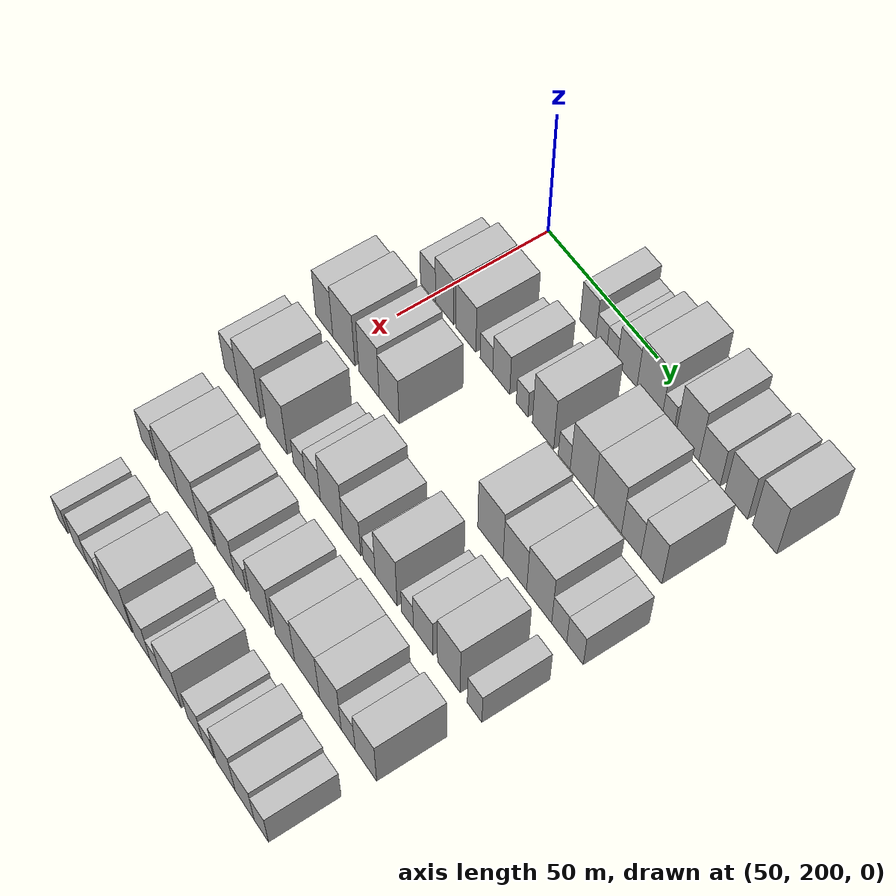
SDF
<sdf version="1.6">
 <world name="default">
  <model name="building_81">
   <static>1</static>
   <pose>50.0000 232.0822 0 0.000000 0.000000 0.000000</pose>
   <link name="link">
    <pose>0 0 9.00 0 0 0</pose>
    <collision name="collision"><geometry><box><size>20.0000 7.2018 18.0000</size></box></geometry></collision>
    <visual name="visual">
     <cast_shadows>0</cast_shadows>
     <geometry><box><size>20.0000 7.2018 18.0000</size></box></geometry>
     <material>
      <script>
       <uri>model://HANNAS_wall/materials/scripts</uri>
       <uri>model://HANNAS_wall/materials/textures</uri>
       <name>vrc/HANNAS_wall</name>
      </script>
     </material>
    </visual>
   </link>
  </model>
  <model name="building_82">
   <static>1</static>
   <pose>50.0000 238.1097 0 0.000000 0.000000 0.000000</pose>
   <link name="link">
    <pose>0 0 6.00 0 0 0</pose>
    <collision name="collision"><geometry><box><size>20.0000 4.8532 12.0000</size></box></geometry></collision>
    <visual name="visual">
     <cast_shadows>0</cast_shadows>
     <geometry><box><size>20.0000 4.8532 12.0000</size></box></geometry>
     <material>
      <script>
       <uri>model://HANNAS_wall/materials/scripts</uri>
       <uri>model://HANNAS_wall/materials/textures</uri>
       <name>vrc/HANNAS_wall</name>
      </script>
     </material>
    </visual>
   </link>
  </model>
  <model name="building_83">
   <static>1</static>
   <pose>50.0000 242.9436 0 0.000000 0.000000 0.000000</pose>
   <link name="link">
    <pose>0 0 6.00 0 0 0</pose>
    <collision name="collision"><geometry><box><size>20.0000 4.8146 12.0000</size></box></geometry></collision>
    <visual name="visual">
     <cast_shadows>0</cast_shadows>
     <geometry><box><size>20.0000 4.8146 12.0000</size></box></geometry>
     <material>
      <script>
       <uri>model://HANNAS_wall/materials/scripts</uri>
       <uri>model://HANNAS_wall/materials/textures</uri>
       <name>vrc/HANNAS_wall</name>
      </script>
     </material>
    </visual>
   </link>
  </model>
  <model name="building_84">
   <static>1</static>
   <pose>50.0000 249.7162 0 0.000000 0.000000 0.000000</pose>
   <link name="link">
    <pose>0 0 9.00 0 0 0</pose>
    <collision name="collision"><geometry><box><size>20.0000 8.7304 18.0000</size></box></geometry></collision>
    <visual name="visual">
     <cast_shadows>0</cast_shadows>
     <geometry><box><size>20.0000 8.7304 18.0000</size></box></geometry>
     <material>
      <script>
       <uri>model://HANNAS_wall/materials/scripts</uri>
       <uri>model://HANNAS_wall/materials/textures</uri>
       <name>vrc/HANNAS_wall</name>
      </script>
     </material>
    </visual>
   </link>
  </model>
  <model name="building_85">
   <static>1</static>
   <pose>50.0000 259.5918 0 0.000000 0.000000 0.000000</pose>
   <link name="link">
    <pose>0 0 12.00 0 0 0</pose>
    <collision name="collision"><geometry><box><size>20.0000 11.0208 24.0000</size></box></geometry></collision>
    <visual name="visual">
     <cast_shadows>0</cast_shadows>
     <geometry><box><size>20.0000 11.0208 24.0000</size></box></geometry>
     <material>
      <script>
       <uri>model://HANNAS_wall/materials/scripts</uri>
       <uri>model://HANNAS_wall/materials/textures</uri>
       <name>vrc/HANNAS_wall</name>
      </script>
     </material>
    </visual>
   </link>
  </model>
  <model name="building_86">
   <static>1</static>
   <pose>50.0000 267.6276 0 0.000000 0.000000 0.000000</pose>
   <link name="link">
    <pose>0 0 6.00 0 0 0</pose>
    <collision name="collision"><geometry><box><size>20.0000 5.0508 12.0000</size></box></geometry></collision>
    <visual name="visual">
     <cast_shadows>0</cast_shadows>
     <geometry><box><size>20.0000 5.0508 12.0000</size></box></geometry>
     <material>
      <script>
       <uri>model://HANNAS_wall/materials/scripts</uri>
       <uri>model://HANNAS_wall/materials/textures</uri>
       <name>vrc/HANNAS_wall</name>
      </script>
     </material>
    </visual>
   </link>
  </model>
  <model name="building_87">
   <static>1</static>
   <pose>50.0000 276.0308 0 0.000000 0.000000 0.000000</pose>
   <link name="link">
    <pose>0 0 12.00 0 0 0</pose>
    <collision name="collision"><geometry><box><size>20.0000 9.7556 24.0000</size></box></geometry></collision>
    <visual name="visual">
     <cast_shadows>0</cast_shadows>
     <geometry><box><size>20.0000 9.7556 24.0000</size></box></geometry>
     <material>
      <script>
       <uri>model://HANNAS_wall/materials/scripts</uri>
       <uri>model://HANNAS_wall/materials/textures</uri>
       <name>vrc/HANNAS_wall</name>
      </script>
     </material>
    </visual>
   </link>
  </model>
  <model name="building_88">
   <static>1</static>
   <pose>50.0000 285.3650 0 0.000000 0.000000 0.000000</pose>
   <link name="link">
    <pose>0 0 9.00 0 0 0</pose>
    <collision name="collision"><geometry><box><size>20.0000 8.9129 18.0000</size></box></geometry></collision>
    <visual name="visual">
     <cast_shadows>0</cast_shadows>
     <geometry><box><size>20.0000 8.9129 18.0000</size></box></geometry>
     <material>
      <script>
       <uri>model://HANNAS_wall/materials/scripts</uri>
       <uri>model://HANNAS_wall/materials/textures</uri>
       <name>vrc/HANNAS_wall</name>
      </script>
     </material>
    </visual>
   </link>
  </model>
  <model name="building_89">
   <static>1</static>
   <pose>50.0000 296.5421 0 0.000000 0.000000 0.000000</pose>
   <link name="link">
    <pose>0 0 10.50 0 0 0</pose>
    <collision name="collision"><geometry><box><size>20.0000 9.4413 21.0000</size></box></geometry></collision>
    <visual name="visual">
     <cast_shadows>0</cast_shadows>
     <geometry><box><size>20.0000 9.4413 21.0000</size></box></geometry>
     <material>
      <script>
       <uri>model://HANNAS_wall/materials/scripts</uri>
       <uri>model://HANNAS_wall/materials/textures</uri>
       <name>vrc/HANNAS_wall</name>
      </script>
     </material>
    </visual>
   </link>
  </model>
  <model name="building_90">
   <static>1</static>
   <pose>50.0000 308.1931 0 0.000000 0.000000 0.000000</pose>
   <link name="link">
    <pose>0 0 12.00 0 0 0</pose>
    <collision name="collision"><geometry><box><size>20.0000 9.8607 24.0000</size></box></geometry></collision>
    <visual name="visual">
     <cast_shadows>0</cast_shadows>
     <geometry><box><size>20.0000 9.8607 24.0000</size></box></geometry>
     <material>
      <script>
       <uri>model://HANNAS_wall/materials/scripts</uri>
       <uri>model://HANNAS_wall/materials/textures</uri>
       <name>vrc/HANNAS_wall</name>
      </script>
     </material>
    </visual>
   </link>
  </model>
  <model name="building_197">
   <static>1</static>
   <pose>79.0000 198.4437 0 0.000000 0.000000 0.000000</pose>
   <link name="link">
    <pose>0 0 7.50 0 0 0</pose>
    <collision name="collision"><geometry><box><size>20.0000 7.3373 15.0000</size></box></geometry></collision>
    <visual name="visual">
     <cast_shadows>0</cast_shadows>
     <geometry><box><size>20.0000 7.3373 15.0000</size></box></geometry>
     <material>
      <script>
       <uri>model://HANNAS_wall/materials/scripts</uri>
       <uri>model://HANNAS_wall/materials/textures</uri>
       <name>vrc/HANNAS_wall</name>
      </script>
     </material>
    </visual>
   </link>
  </model>
  <model name="building_198">
   <static>1</static>
   <pose>79.0000 206.5145 0 0.000000 0.000000 0.000000</pose>
   <link name="link">
    <pose>0 0 10.50 0 0 0</pose>
    <collision name="collision"><geometry><box><size>20.0000 8.8042 21.0000</size></box></geometry></collision>
    <visual name="visual">
     <cast_shadows>0</cast_shadows>
     <geometry><box><size>20.0000 8.8042 21.0000</size></box></geometry>
     <material>
      <script>
       <uri>model://HANNAS_wall/materials/scripts</uri>
       <uri>model://HANNAS_wall/materials/textures</uri>
       <name>vrc/HANNAS_wall</name>
      </script>
     </material>
    </visual>
   </link>
  </model>
  <model name="building_199">
   <static>1</static>
   <pose>79.0000 216.6634 0 0.000000 0.000000 0.000000</pose>
   <link name="link">
    <pose>0 0 10.50 0 0 0</pose>
    <collision name="collision"><geometry><box><size>20.0000 9.4935 21.0000</size></box></geometry></collision>
    <visual name="visual">
     <cast_shadows>0</cast_shadows>
     <geometry><box><size>20.0000 9.4935 21.0000</size></box></geometry>
     <material>
      <script>
       <uri>model://HANNAS_wall/materials/scripts</uri>
       <uri>model://HANNAS_wall/materials/textures</uri>
       <name>vrc/HANNAS_wall</name>
      </script>
     </material>
    </visual>
   </link>
  </model>
  <model name="building_200">
   <static>1</static>
   <pose>79.0000 226.3598 0 0.000000 0.000000 0.000000</pose>
   <link name="link">
    <pose>0 0 6.00 0 0 0</pose>
    <collision name="collision"><geometry><box><size>20.0000 5.8993 12.0000</size></box></geometry></collision>
    <visual name="visual">
     <cast_shadows>0</cast_shadows>
     <geometry><box><size>20.0000 5.8993 12.0000</size></box></geometry>
     <material>
      <script>
       <uri>model://HANNAS_wall/materials/scripts</uri>
       <uri>model://HANNAS_wall/materials/textures</uri>
       <name>vrc/HANNAS_wall</name>
      </script>
     </material>
    </visual>
   </link>
  </model>
  <model name="building_201">
   <static>1</static>
   <pose>79.0000 233.2554 0 0.000000 0.000000 0.000000</pose>
   <link name="link">
    <pose>0 0 9.00 0 0 0</pose>
    <collision name="collision"><geometry><box><size>20.0000 7.8919 18.0000</size></box></geometry></collision>
    <visual name="visual">
     <cast_shadows>0</cast_shadows>
     <geometry><box><size>20.0000 7.8919 18.0000</size></box></geometry>
     <material>
      <script>
       <uri>model://HANNAS_wall/materials/scripts</uri>
       <uri>model://HANNAS_wall/materials/textures</uri>
       <name>vrc/HANNAS_wall</name>
      </script>
     </material>
    </visual>
   </link>
  </model>
  <model name="building_202">
   <static>1</static>
   <pose>79.0000 242.8614 0 0.000000 0.000000 0.000000</pose>
   <link name="link">
    <pose>0 0 6.00 0 0 0</pose>
    <collision name="collision"><geometry><box><size>20.0000 5.3201 12.0000</size></box></geometry></collision>
    <visual name="visual">
     <cast_shadows>0</cast_shadows>
     <geometry><box><size>20.0000 5.3201 12.0000</size></box></geometry>
     <material>
      <script>
       <uri>model://HANNAS_wall/materials/scripts</uri>
       <uri>model://HANNAS_wall/materials/textures</uri>
       <name>vrc/HANNAS_wall</name>
      </script>
     </material>
    </visual>
   </link>
  </model>
  <model name="building_203">
   <static>1</static>
   <pose>79.0000 252.3346 0 0.000000 0.000000 0.000000</pose>
   <link name="link">
    <pose>0 0 12.00 0 0 0</pose>
    <collision name="collision"><geometry><box><size>20.0000 9.6264 24.0000</size></box></geometry></collision>
    <visual name="visual">
     <cast_shadows>0</cast_shadows>
     <geometry><box><size>20.0000 9.6264 24.0000</size></box></geometry>
     <material>
      <script>
       <uri>model://HANNAS_wall/materials/scripts</uri>
       <uri>model://HANNAS_wall/materials/textures</uri>
       <name>vrc/HANNAS_wall</name>
      </script>
     </material>
    </visual>
   </link>
  </model>
  <model name="building_204">
   <static>1</static>
   <pose>79.0000 261.7977 0 0.000000 0.000000 0.000000</pose>
   <link name="link">
    <pose>0 0 6.00 0 0 0</pose>
    <collision name="collision"><geometry><box><size>20.0000 5.2998 12.0000</size></box></geometry></collision>
    <visual name="visual">
     <cast_shadows>0</cast_shadows>
     <geometry><box><size>20.0000 5.2998 12.0000</size></box></geometry>
     <material>
      <script>
       <uri>model://HANNAS_wall/materials/scripts</uri>
       <uri>model://HANNAS_wall/materials/textures</uri>
       <name>vrc/HANNAS_wall</name>
      </script>
     </material>
    </visual>
   </link>
  </model>
  <model name="building_205">
   <static>1</static>
   <pose>79.0000 269.6267 0 0.000000 0.000000 0.000000</pose>
   <link name="link">
    <pose>0 0 12.00 0 0 0</pose>
    <collision name="collision"><geometry><box><size>20.0000 10.3583 24.0000</size></box></geometry></collision>
    <visual name="visual">
     <cast_shadows>0</cast_shadows>
     <geometry><box><size>20.0000 10.3583 24.0000</size></box></geometry>
     <material>
      <script>
       <uri>model://HANNAS_wall/materials/scripts</uri>
       <uri>model://HANNAS_wall/materials/textures</uri>
       <name>vrc/HANNAS_wall</name>
      </script>
     </material>
    </visual>
   </link>
  </model>
  <model name="building_206">
   <static>1</static>
   <pose>79.0000 280.7469 0 0.000000 0.000000 0.000000</pose>
   <link name="link">
    <pose>0 0 12.00 0 0 0</pose>
    <collision name="collision"><geometry><box><size>20.0000 11.8820 24.0000</size></box></geometry></collision>
    <visual name="visual">
     <cast_shadows>0</cast_shadows>
     <geometry><box><size>20.0000 11.8820 24.0000</size></box></geometry>
     <material>
      <script>
       <uri>model://HANNAS_wall/materials/scripts</uri>
       <uri>model://HANNAS_wall/materials/textures</uri>
       <name>vrc/HANNAS_wall</name>
      </script>
     </material>
    </visual>
   </link>
  </model>
  <model name="building_207">
   <static>1</static>
   <pose>79.0000 290.7935 0 0.000000 0.000000 0.000000</pose>
   <link name="link">
    <pose>0 0 9.00 0 0 0</pose>
    <collision name="collision"><geometry><box><size>20.0000 8.2112 18.0000</size></box></geometry></collision>
    <visual name="visual">
     <cast_shadows>0</cast_shadows>
     <geometry><box><size>20.0000 8.2112 18.0000</size></box></geometry>
     <material>
      <script>
       <uri>model://HANNAS_wall/materials/scripts</uri>
       <uri>model://HANNAS_wall/materials/textures</uri>
       <name>vrc/HANNAS_wall</name>
      </script>
     </material>
    </visual>
   </link>
  </model>
  <model name="building_208">
   <static>1</static>
   <pose>79.0000 299.3038 0 0.000000 0.000000 0.000000</pose>
   <link name="link">
    <pose>0 0 10.50 0 0 0</pose>
    <collision name="collision"><geometry><box><size>20.0000 8.8093 21.0000</size></box></geometry></collision>
    <visual name="visual">
     <cast_shadows>0</cast_shadows>
     <geometry><box><size>20.0000 8.8093 21.0000</size></box></geometry>
     <material>
      <script>
       <uri>model://HANNAS_wall/materials/scripts</uri>
       <uri>model://HANNAS_wall/materials/textures</uri>
       <name>vrc/HANNAS_wall</name>
      </script>
     </material>
    </visual>
   </link>
  </model>
  <model name="building_308">
   <static>1</static>
   <pose>108.0000 191.8840 0 0.000000 0.000000 0.000000</pose>
   <link name="link">
    <pose>0 0 10.50 0 0 0</pose>
    <collision name="collision"><geometry><box><size>20.0000 8.6152 21.0000</size></box></geometry></collision>
    <visual name="visual">
     <cast_shadows>0</cast_shadows>
     <geometry><box><size>20.0000 8.6152 21.0000</size></box></geometry>
     <material>
      <script>
       <uri>model://HANNAS_wall/materials/scripts</uri>
       <uri>model://HANNAS_wall/materials/textures</uri>
       <name>vrc/HANNAS_wall</name>
      </script>
     </material>
    </visual>
   </link>
  </model>
  <model name="building_309">
   <static>1</static>
   <pose>108.0000 201.6626 0 0.000000 0.000000 0.000000</pose>
   <link name="link">
    <pose>0 0 12.00 0 0 0</pose>
    <collision name="collision"><geometry><box><size>20.0000 10.9420 24.0000</size></box></geometry></collision>
    <visual name="visual">
     <cast_shadows>0</cast_shadows>
     <geometry><box><size>20.0000 10.9420 24.0000</size></box></geometry>
     <material>
      <script>
       <uri>model://HANNAS_wall/materials/scripts</uri>
       <uri>model://HANNAS_wall/materials/textures</uri>
       <name>vrc/HANNAS_wall</name>
      </script>
     </material>
    </visual>
   </link>
  </model>
  <model name="building_310">
   <static>1</static>
   <pose>108.0000 214.0569 0 0.000000 0.000000 0.000000</pose>
   <link name="link">
    <pose>0 0 12.00 0 0 0</pose>
    <collision name="collision"><geometry><box><size>20.0000 9.8467 24.0000</size></box></geometry></collision>
    <visual name="visual">
     <cast_shadows>0</cast_shadows>
     <geometry><box><size>20.0000 9.8467 24.0000</size></box></geometry>
     <material>
      <script>
       <uri>model://HANNAS_wall/materials/scripts</uri>
       <uri>model://HANNAS_wall/materials/textures</uri>
       <name>vrc/HANNAS_wall</name>
      </script>
     </material>
    </visual>
   </link>
  </model>
  <model name="building_311">
   <static>1</static>
   <pose>108.0000 223.7690 0 0.000000 0.000000 0.000000</pose>
   <link name="link">
    <pose>0 0 10.50 0 0 0</pose>
    <collision name="collision"><geometry><box><size>20.0000 9.5775 21.0000</size></box></geometry></collision>
    <visual name="visual">
     <cast_shadows>0</cast_shadows>
     <geometry><box><size>20.0000 9.5775 21.0000</size></box></geometry>
     <material>
      <script>
       <uri>model://HANNAS_wall/materials/scripts</uri>
       <uri>model://HANNAS_wall/materials/textures</uri>
       <name>vrc/HANNAS_wall</name>
      </script>
     </material>
    </visual>
   </link>
  </model>
  <model name="building_312">
   <static>1</static>
   <pose>108.0000 270.4684 0 0.000000 0.000000 0.000000</pose>
   <link name="link">
    <pose>0 0 12.00 0 0 0</pose>
    <collision name="collision"><geometry><box><size>20.0000 11.2738 24.0000</size></box></geometry></collision>
    <visual name="visual">
     <cast_shadows>0</cast_shadows>
     <geometry><box><size>20.0000 11.2738 24.0000</size></box></geometry>
     <material>
      <script>
       <uri>model://HANNAS_wall/materials/scripts</uri>
       <uri>model://HANNAS_wall/materials/textures</uri>
       <name>vrc/HANNAS_wall</name>
      </script>
     </material>
    </visual>
   </link>
  </model>
  <model name="building_313">
   <static>1</static>
   <pose>108.0000 281.2493 0 0.000000 0.000000 0.000000</pose>
   <link name="link">
    <pose>0 0 10.50 0 0 0</pose>
    <collision name="collision"><geometry><box><size>20.0000 10.2880 21.0000</size></box></geometry></collision>
    <visual name="visual">
     <cast_shadows>0</cast_shadows>
     <geometry><box><size>20.0000 10.2880 21.0000</size></box></geometry>
     <material>
      <script>
       <uri>model://HANNAS_wall/materials/scripts</uri>
       <uri>model://HANNAS_wall/materials/textures</uri>
       <name>vrc/HANNAS_wall</name>
      </script>
     </material>
    </visual>
   </link>
  </model>
  <model name="building_314">
   <static>1</static>
   <pose>108.0000 291.7697 0 0.000000 0.000000 0.000000</pose>
   <link name="link">
    <pose>0 0 12.00 0 0 0</pose>
    <collision name="collision"><geometry><box><size>20.0000 10.7527 24.0000</size></box></geometry></collision>
    <visual name="visual">
     <cast_shadows>0</cast_shadows>
     <geometry><box><size>20.0000 10.7527 24.0000</size></box></geometry>
     <material>
      <script>
       <uri>model://HANNAS_wall/materials/scripts</uri>
       <uri>model://HANNAS_wall/materials/textures</uri>
       <name>vrc/HANNAS_wall</name>
      </script>
     </material>
    </visual>
   </link>
  </model>
  <model name="building_315">
   <static>1</static>
   <pose>108.0000 300.3325 0 0.000000 0.000000 0.000000</pose>
   <link name="link">
    <pose>0 0 7.50 0 0 0</pose>
    <collision name="collision"><geometry><box><size>20.0000 6.3730 15.0000</size></box></geometry></collision>
    <visual name="visual">
     <cast_shadows>0</cast_shadows>
     <geometry><box><size>20.0000 6.3730 15.0000</size></box></geometry>
     <material>
      <script>
       <uri>model://HANNAS_wall/materials/scripts</uri>
       <uri>model://HANNAS_wall/materials/textures</uri>
       <name>vrc/HANNAS_wall</name>
      </script>
     </material>
    </visual>
   </link>
  </model>
  <model name="building_316">
   <static>1</static>
   <pose>108.0000 307.0119 0 0.000000 0.000000 0.000000</pose>
   <link name="link">
    <pose>0 0 7.50 0 0 0</pose>
    <collision name="collision"><geometry><box><size>20.0000 6.9856 15.0000</size></box></geometry></collision>
    <visual name="visual">
     <cast_shadows>0</cast_shadows>
     <geometry><box><size>20.0000 6.9856 15.0000</size></box></geometry>
     <material>
      <script>
       <uri>model://HANNAS_wall/materials/scripts</uri>
       <uri>model://HANNAS_wall/materials/textures</uri>
       <name>vrc/HANNAS_wall</name>
      </script>
     </material>
    </visual>
   </link>
  </model>
  <model name="building_423">
   <static>1</static>
   <pose>137.0000 192.1922 0 0.000000 0.000000 0.000000</pose>
   <link name="link">
    <pose>0 0 9.00 0 0 0</pose>
    <collision name="collision"><geometry><box><size>20.0000 7.2826 18.0000</size></box></geometry></collision>
    <visual name="visual">
     <cast_shadows>0</cast_shadows>
     <geometry><box><size>20.0000 7.2826 18.0000</size></box></geometry>
     <material>
      <script>
       <uri>model://HANNAS_wall/materials/scripts</uri>
       <uri>model://HANNAS_wall/materials/textures</uri>
       <name>vrc/HANNAS_wall</name>
      </script>
     </material>
    </visual>
   </link>
  </model>
  <model name="building_424">
   <static>1</static>
   <pose>137.0000 201.4067 0 0.000000 0.000000 0.000000</pose>
   <link name="link">
    <pose>0 0 12.00 0 0 0</pose>
    <collision name="collision"><geometry><box><size>20.0000 11.1464 24.0000</size></box></geometry></collision>
    <visual name="visual">
     <cast_shadows>0</cast_shadows>
     <geometry><box><size>20.0000 11.1464 24.0000</size></box></geometry>
     <material>
      <script>
       <uri>model://HANNAS_wall/materials/scripts</uri>
       <uri>model://HANNAS_wall/materials/textures</uri>
       <name>vrc/HANNAS_wall</name>
      </script>
     </material>
    </visual>
   </link>
  </model>
  <model name="building_425">
   <static>1</static>
   <pose>137.0000 215.0404 0 0.000000 0.000000 0.000000</pose>
   <link name="link">
    <pose>0 0 12.00 0 0 0</pose>
    <collision name="collision"><geometry><box><size>20.0000 10.1210 24.0000</size></box></geometry></collision>
    <visual name="visual">
     <cast_shadows>0</cast_shadows>
     <geometry><box><size>20.0000 10.1210 24.0000</size></box></geometry>
     <material>
      <script>
       <uri>model://HANNAS_wall/materials/scripts</uri>
       <uri>model://HANNAS_wall/materials/textures</uri>
       <name>vrc/HANNAS_wall</name>
      </script>
     </material>
    </visual>
   </link>
  </model>
  <model name="building_426">
   <static>1</static>
   <pose>137.0000 226.0259 0 0.000000 0.000000 0.000000</pose>
   <link name="link">
    <pose>0 0 6.00 0 0 0</pose>
    <collision name="collision"><geometry><box><size>20.0000 5.8499 12.0000</size></box></geometry></collision>
    <visual name="visual">
     <cast_shadows>0</cast_shadows>
     <geometry><box><size>20.0000 5.8499 12.0000</size></box></geometry>
     <material>
      <script>
       <uri>model://HANNAS_wall/materials/scripts</uri>
       <uri>model://HANNAS_wall/materials/textures</uri>
       <name>vrc/HANNAS_wall</name>
      </script>
     </material>
    </visual>
   </link>
  </model>
  <model name="building_427">
   <static>1</static>
   <pose>137.0000 232.5869 0 0.000000 0.000000 0.000000</pose>
   <link name="link">
    <pose>0 0 7.50 0 0 0</pose>
    <collision name="collision"><geometry><box><size>20.0000 7.2719 15.0000</size></box></geometry></collision>
    <visual name="visual">
     <cast_shadows>0</cast_shadows>
     <geometry><box><size>20.0000 7.2719 15.0000</size></box></geometry>
     <material>
      <script>
       <uri>model://HANNAS_wall/materials/scripts</uri>
       <uri>model://HANNAS_wall/materials/textures</uri>
       <name>vrc/HANNAS_wall</name>
      </script>
     </material>
    </visual>
   </link>
  </model>
  <model name="building_428">
   <static>1</static>
   <pose>137.0000 241.5394 0 0.000000 0.000000 0.000000</pose>
   <link name="link">
    <pose>0 0 12.00 0 0 0</pose>
    <collision name="collision"><geometry><box><size>20.0000 10.6330 24.0000</size></box></geometry></collision>
    <visual name="visual">
     <cast_shadows>0</cast_shadows>
     <geometry><box><size>20.0000 10.6330 24.0000</size></box></geometry>
     <material>
      <script>
       <uri>model://HANNAS_wall/materials/scripts</uri>
       <uri>model://HANNAS_wall/materials/textures</uri>
       <name>vrc/HANNAS_wall</name>
      </script>
     </material>
    </visual>
   </link>
  </model>
  <model name="building_429">
   <static>1</static>
   <pose>137.0000 251.0844 0 0.000000 0.000000 0.000000</pose>
   <link name="link">
    <pose>0 0 9.00 0 0 0</pose>
    <collision name="collision"><geometry><box><size>20.0000 8.4571 18.0000</size></box></geometry></collision>
    <visual name="visual">
     <cast_shadows>0</cast_shadows>
     <geometry><box><size>20.0000 8.4571 18.0000</size></box></geometry>
     <material>
      <script>
       <uri>model://HANNAS_wall/materials/scripts</uri>
       <uri>model://HANNAS_wall/materials/textures</uri>
       <name>vrc/HANNAS_wall</name>
      </script>
     </material>
    </visual>
   </link>
  </model>
  <model name="building_430">
   <static>1</static>
   <pose>137.0000 259.1569 0 0.000000 0.000000 0.000000</pose>
   <link name="link">
    <pose>0 0 6.00 0 0 0</pose>
    <collision name="collision"><geometry><box><size>20.0000 5.6879 12.0000</size></box></geometry></collision>
    <visual name="visual">
     <cast_shadows>0</cast_shadows>
     <geometry><box><size>20.0000 5.6879 12.0000</size></box></geometry>
     <material>
      <script>
       <uri>model://HANNAS_wall/materials/scripts</uri>
       <uri>model://HANNAS_wall/materials/textures</uri>
       <name>vrc/HANNAS_wall</name>
      </script>
     </material>
    </visual>
   </link>
  </model>
  <model name="building_431">
   <static>1</static>
   <pose>137.0000 266.9915 0 0.000000 0.000000 0.000000</pose>
   <link name="link">
    <pose>0 0 12.00 0 0 0</pose>
    <collision name="collision"><geometry><box><size>20.0000 9.9813 24.0000</size></box></geometry></collision>
    <visual name="visual">
     <cast_shadows>0</cast_shadows>
     <geometry><box><size>20.0000 9.9813 24.0000</size></box></geometry>
     <material>
      <script>
       <uri>model://HANNAS_wall/materials/scripts</uri>
       <uri>model://HANNAS_wall/materials/textures</uri>
       <name>vrc/HANNAS_wall</name>
      </script>
     </material>
    </visual>
   </link>
  </model>
  <model name="building_432">
   <static>1</static>
   <pose>137.0000 276.6335 0 0.000000 0.000000 0.000000</pose>
   <link name="link">
    <pose>0 0 6.00 0 0 0</pose>
    <collision name="collision"><geometry><box><size>20.0000 5.3028 12.0000</size></box></geometry></collision>
    <visual name="visual">
     <cast_shadows>0</cast_shadows>
     <geometry><box><size>20.0000 5.3028 12.0000</size></box></geometry>
     <material>
      <script>
       <uri>model://HANNAS_wall/materials/scripts</uri>
       <uri>model://HANNAS_wall/materials/textures</uri>
       <name>vrc/HANNAS_wall</name>
      </script>
     </material>
    </visual>
   </link>
  </model>
  <model name="building_433">
   <static>1</static>
   <pose>137.0000 283.6259 0 0.000000 0.000000 0.000000</pose>
   <link name="link">
    <pose>0 0 9.00 0 0 0</pose>
    <collision name="collision"><geometry><box><size>20.0000 8.6820 18.0000</size></box></geometry></collision>
    <visual name="visual">
     <cast_shadows>0</cast_shadows>
     <geometry><box><size>20.0000 8.6820 18.0000</size></box></geometry>
     <material>
      <script>
       <uri>model://HANNAS_wall/materials/scripts</uri>
       <uri>model://HANNAS_wall/materials/textures</uri>
       <name>vrc/HANNAS_wall</name>
      </script>
     </material>
    </visual>
   </link>
  </model>
  <model name="building_434">
   <static>1</static>
   <pose>137.0000 294.9274 0 0.000000 0.000000 0.000000</pose>
   <link name="link">
    <pose>0 0 12.00 0 0 0</pose>
    <collision name="collision"><geometry><box><size>20.0000 9.9209 24.0000</size></box></geometry></collision>
    <visual name="visual">
     <cast_shadows>0</cast_shadows>
     <geometry><box><size>20.0000 9.9209 24.0000</size></box></geometry>
     <material>
      <script>
       <uri>model://HANNAS_wall/materials/scripts</uri>
       <uri>model://HANNAS_wall/materials/textures</uri>
       <name>vrc/HANNAS_wall</name>
      </script>
     </material>
    </visual>
   </link>
  </model>
  <model name="building_435">
   <static>1</static>
   <pose>137.0000 306.0134 0 0.000000 0.000000 0.000000</pose>
   <link name="link">
    <pose>0 0 7.50 0 0 0</pose>
    <collision name="collision"><geometry><box><size>20.0000 6.2511 15.0000</size></box></geometry></collision>
    <visual name="visual">
     <cast_shadows>0</cast_shadows>
     <geometry><box><size>20.0000 6.2511 15.0000</size></box></geometry>
     <material>
      <script>
       <uri>model://HANNAS_wall/materials/scripts</uri>
       <uri>model://HANNAS_wall/materials/textures</uri>
       <name>vrc/HANNAS_wall</name>
      </script>
     </material>
    </visual>
   </link>
  </model>
  <model name="building_540">
   <static>1</static>
   <pose>166.0000 198.9469 0 0.000000 0.000000 0.000000</pose>
   <link name="link">
    <pose>0 0 7.50 0 0 0</pose>
    <collision name="collision"><geometry><box><size>20.0000 7.3738 15.0000</size></box></geometry></collision>
    <visual name="visual">
     <cast_shadows>0</cast_shadows>
     <geometry><box><size>20.0000 7.3738 15.0000</size></box></geometry>
     <material>
      <script>
       <uri>model://HANNAS_wall/materials/scripts</uri>
       <uri>model://HANNAS_wall/materials/textures</uri>
       <name>vrc/HANNAS_wall</name>
      </script>
     </material>
    </visual>
   </link>
  </model>
  <model name="building_541">
   <static>1</static>
   <pose>166.0000 209.4450 0 0.000000 0.000000 0.000000</pose>
   <link name="link">
    <pose>0 0 10.50 0 0 0</pose>
    <collision name="collision"><geometry><box><size>20.0000 9.6223 21.0000</size></box></geometry></collision>
    <visual name="visual">
     <cast_shadows>0</cast_shadows>
     <geometry><box><size>20.0000 9.6223 21.0000</size></box></geometry>
     <material>
      <script>
       <uri>model://HANNAS_wall/materials/scripts</uri>
       <uri>model://HANNAS_wall/materials/textures</uri>
       <name>vrc/HANNAS_wall</name>
      </script>
     </material>
    </visual>
   </link>
  </model>
  <model name="building_542">
   <static>1</static>
   <pose>166.0000 219.3748 0 0.000000 0.000000 0.000000</pose>
   <link name="link">
    <pose>0 0 10.50 0 0 0</pose>
    <collision name="collision"><geometry><box><size>20.0000 10.2372 21.0000</size></box></geometry></collision>
    <visual name="visual">
     <cast_shadows>0</cast_shadows>
     <geometry><box><size>20.0000 10.2372 21.0000</size></box></geometry>
     <material>
      <script>
       <uri>model://HANNAS_wall/materials/scripts</uri>
       <uri>model://HANNAS_wall/materials/textures</uri>
       <name>vrc/HANNAS_wall</name>
      </script>
     </material>
    </visual>
   </link>
  </model>
  <model name="building_543">
   <static>1</static>
   <pose>166.0000 228.4553 0 0.000000 0.000000 0.000000</pose>
   <link name="link">
    <pose>0 0 9.00 0 0 0</pose>
    <collision name="collision"><geometry><box><size>20.0000 7.9239 18.0000</size></box></geometry></collision>
    <visual name="visual">
     <cast_shadows>0</cast_shadows>
     <geometry><box><size>20.0000 7.9239 18.0000</size></box></geometry>
     <material>
      <script>
       <uri>model://HANNAS_wall/materials/scripts</uri>
       <uri>model://HANNAS_wall/materials/textures</uri>
       <name>vrc/HANNAS_wall</name>
      </script>
     </material>
    </visual>
   </link>
  </model>
  <model name="building_544">
   <static>1</static>
   <pose>166.0000 237.7470 0 0.000000 0.000000 0.000000</pose>
   <link name="link">
    <pose>0 0 9.00 0 0 0</pose>
    <collision name="collision"><geometry><box><size>20.0000 8.6594 18.0000</size></box></geometry></collision>
    <visual name="visual">
     <cast_shadows>0</cast_shadows>
     <geometry><box><size>20.0000 8.6594 18.0000</size></box></geometry>
     <material>
      <script>
       <uri>model://HANNAS_wall/materials/scripts</uri>
       <uri>model://HANNAS_wall/materials/textures</uri>
       <name>vrc/HANNAS_wall</name>
      </script>
     </material>
    </visual>
   </link>
  </model>
  <model name="building_545">
   <static>1</static>
   <pose>166.0000 244.9732 0 0.000000 0.000000 0.000000</pose>
   <link name="link">
    <pose>0 0 6.00 0 0 0</pose>
    <collision name="collision"><geometry><box><size>20.0000 5.7930 12.0000</size></box></geometry></collision>
    <visual name="visual">
     <cast_shadows>0</cast_shadows>
     <geometry><box><size>20.0000 5.7930 12.0000</size></box></geometry>
     <material>
      <script>
       <uri>model://HANNAS_wall/materials/scripts</uri>
       <uri>model://HANNAS_wall/materials/textures</uri>
       <name>vrc/HANNAS_wall</name>
      </script>
     </material>
    </visual>
   </link>
  </model>
  <model name="building_546">
   <static>1</static>
   <pose>166.0000 254.7560 0 0.000000 0.000000 0.000000</pose>
   <link name="link">
    <pose>0 0 10.50 0 0 0</pose>
    <collision name="collision"><geometry><box><size>20.0000 9.7726 21.0000</size></box></geometry></collision>
    <visual name="visual">
     <cast_shadows>0</cast_shadows>
     <geometry><box><size>20.0000 9.7726 21.0000</size></box></geometry>
     <material>
      <script>
       <uri>model://HANNAS_wall/materials/scripts</uri>
       <uri>model://HANNAS_wall/materials/textures</uri>
       <name>vrc/HANNAS_wall</name>
      </script>
     </material>
    </visual>
   </link>
  </model>
  <model name="building_547">
   <static>1</static>
   <pose>166.0000 266.1890 0 0.000000 0.000000 0.000000</pose>
   <link name="link">
    <pose>0 0 10.50 0 0 0</pose>
    <collision name="collision"><geometry><box><size>20.0000 9.0932 21.0000</size></box></geometry></collision>
    <visual name="visual">
     <cast_shadows>0</cast_shadows>
     <geometry><box><size>20.0000 9.0932 21.0000</size></box></geometry>
     <material>
      <script>
       <uri>model://HANNAS_wall/materials/scripts</uri>
       <uri>model://HANNAS_wall/materials/textures</uri>
       <name>vrc/HANNAS_wall</name>
      </script>
     </material>
    </visual>
   </link>
  </model>
  <model name="building_548">
   <static>1</static>
   <pose>166.0000 276.4269 0 0.000000 0.000000 0.000000</pose>
   <link name="link">
    <pose>0 0 12.00 0 0 0</pose>
    <collision name="collision"><geometry><box><size>20.0000 11.3827 24.0000</size></box></geometry></collision>
    <visual name="visual">
     <cast_shadows>0</cast_shadows>
     <geometry><box><size>20.0000 11.3827 24.0000</size></box></geometry>
     <material>
      <script>
       <uri>model://HANNAS_wall/materials/scripts</uri>
       <uri>model://HANNAS_wall/materials/textures</uri>
       <name>vrc/HANNAS_wall</name>
      </script>
     </material>
    </visual>
   </link>
  </model>
  <model name="building_549">
   <static>1</static>
   <pose>166.0000 287.0014 0 0.000000 0.000000 0.000000</pose>
   <link name="link">
    <pose>0 0 12.00 0 0 0</pose>
    <collision name="collision"><geometry><box><size>20.0000 9.7663 24.0000</size></box></geometry></collision>
    <visual name="visual">
     <cast_shadows>0</cast_shadows>
     <geometry><box><size>20.0000 9.7663 24.0000</size></box></geometry>
     <material>
      <script>
       <uri>model://HANNAS_wall/materials/scripts</uri>
       <uri>model://HANNAS_wall/materials/textures</uri>
       <name>vrc/HANNAS_wall</name>
      </script>
     </material>
    </visual>
   </link>
  </model>
  <model name="building_550">
   <static>1</static>
   <pose>166.0000 294.9989 0 0.000000 0.000000 0.000000</pose>
   <link name="link">
    <pose>0 0 7.50 0 0 0</pose>
    <collision name="collision"><geometry><box><size>20.0000 6.2285 15.0000</size></box></geometry></collision>
    <visual name="visual">
     <cast_shadows>0</cast_shadows>
     <geometry><box><size>20.0000 6.2285 15.0000</size></box></geometry>
     <material>
      <script>
       <uri>model://HANNAS_wall/materials/scripts</uri>
       <uri>model://HANNAS_wall/materials/textures</uri>
       <name>vrc/HANNAS_wall</name>
      </script>
     </material>
    </visual>
   </link>
  </model>
  <model name="building_551">
   <static>1</static>
   <pose>166.0000 302.8084 0 0.000000 0.000000 0.000000</pose>
   <link name="link">
    <pose>0 0 10.50 0 0 0</pose>
    <collision name="collision"><geometry><box><size>20.0000 9.3905 21.0000</size></box></geometry></collision>
    <visual name="visual">
     <cast_shadows>0</cast_shadows>
     <geometry><box><size>20.0000 9.3905 21.0000</size></box></geometry>
     <material>
      <script>
       <uri>model://HANNAS_wall/materials/scripts</uri>
       <uri>model://HANNAS_wall/materials/textures</uri>
       <name>vrc/HANNAS_wall</name>
      </script>
     </material>
    </visual>
   </link>
  </model>
  <model name="building_649">
   <static>1</static>
   <pose>195.0000 206.2062 0 0.000000 0.000000 0.000000</pose>
   <link name="link">
    <pose>0 0 6.00 0 0 0</pose>
    <collision name="collision"><geometry><box><size>20.0000 5.0483 12.0000</size></box></geometry></collision>
    <visual name="visual">
     <cast_shadows>0</cast_shadows>
     <geometry><box><size>20.0000 5.0483 12.0000</size></box></geometry>
     <material>
      <script>
       <uri>model://HANNAS_wall/materials/scripts</uri>
       <uri>model://HANNAS_wall/materials/textures</uri>
       <name>vrc/HANNAS_wall</name>
      </script>
     </material>
    </visual>
   </link>
  </model>
  <model name="building_650">
   <static>1</static>
   <pose>195.0000 215.3175 0 0.000000 0.000000 0.000000</pose>
   <link name="link">
    <pose>0 0 7.50 0 0 0</pose>
    <collision name="collision"><geometry><box><size>20.0000 7.1744 15.0000</size></box></geometry></collision>
    <visual name="visual">
     <cast_shadows>0</cast_shadows>
     <geometry><box><size>20.0000 7.1744 15.0000</size></box></geometry>
     <material>
      <script>
       <uri>model://HANNAS_wall/materials/scripts</uri>
       <uri>model://HANNAS_wall/materials/textures</uri>
       <name>vrc/HANNAS_wall</name>
      </script>
     </material>
    </visual>
   </link>
  </model>
  <model name="building_651">
   <static>1</static>
   <pose>195.0000 221.8128 0 0.000000 0.000000 0.000000</pose>
   <link name="link">
    <pose>0 0 6.00 0 0 0</pose>
    <collision name="collision"><geometry><box><size>20.0000 5.8161 12.0000</size></box></geometry></collision>
    <visual name="visual">
     <cast_shadows>0</cast_shadows>
     <geometry><box><size>20.0000 5.8161 12.0000</size></box></geometry>
     <material>
      <script>
       <uri>model://HANNAS_wall/materials/scripts</uri>
       <uri>model://HANNAS_wall/materials/textures</uri>
       <name>vrc/HANNAS_wall</name>
      </script>
     </material>
    </visual>
   </link>
  </model>
  <model name="building_652">
   <static>1</static>
   <pose>195.0000 227.2645 0 0.000000 0.000000 0.000000</pose>
   <link name="link">
    <pose>0 0 6.00 0 0 0</pose>
    <collision name="collision"><geometry><box><size>20.0000 5.0872 12.0000</size></box></geometry></collision>
    <visual name="visual">
     <cast_shadows>0</cast_shadows>
     <geometry><box><size>20.0000 5.0872 12.0000</size></box></geometry>
     <material>
      <script>
       <uri>model://HANNAS_wall/materials/scripts</uri>
       <uri>model://HANNAS_wall/materials/textures</uri>
       <name>vrc/HANNAS_wall</name>
      </script>
     </material>
    </visual>
   </link>
  </model>
  <model name="building_653">
   <static>1</static>
   <pose>195.0000 235.7923 0 0.000000 0.000000 0.000000</pose>
   <link name="link">
    <pose>0 0 12.00 0 0 0</pose>
    <collision name="collision"><geometry><box><size>20.0000 11.9684 24.0000</size></box></geometry></collision>
    <visual name="visual">
     <cast_shadows>0</cast_shadows>
     <geometry><box><size>20.0000 11.9684 24.0000</size></box></geometry>
     <material>
      <script>
       <uri>model://HANNAS_wall/materials/scripts</uri>
       <uri>model://HANNAS_wall/materials/textures</uri>
       <name>vrc/HANNAS_wall</name>
      </script>
     </material>
    </visual>
   </link>
  </model>
  <model name="building_654">
   <static>1</static>
   <pose>195.0000 246.7324 0 0.000000 0.000000 0.000000</pose>
   <link name="link">
    <pose>0 0 9.00 0 0 0</pose>
    <collision name="collision"><geometry><box><size>20.0000 7.9119 18.0000</size></box></geometry></collision>
    <visual name="visual">
     <cast_shadows>0</cast_shadows>
     <geometry><box><size>20.0000 7.9119 18.0000</size></box></geometry>
     <material>
      <script>
       <uri>model://HANNAS_wall/materials/scripts</uri>
       <uri>model://HANNAS_wall/materials/textures</uri>
       <name>vrc/HANNAS_wall</name>
      </script>
     </material>
    </visual>
   </link>
  </model>
  <model name="building_655">
   <static>1</static>
   <pose>195.0000 253.4240 0 0.000000 0.000000 0.000000</pose>
   <link name="link">
    <pose>0 0 6.00 0 0 0</pose>
    <collision name="collision"><geometry><box><size>20.0000 5.4713 12.0000</size></box></geometry></collision>
    <visual name="visual">
     <cast_shadows>0</cast_shadows>
     <geometry><box><size>20.0000 5.4713 12.0000</size></box></geometry>
     <material>
      <script>
       <uri>model://HANNAS_wall/materials/scripts</uri>
       <uri>model://HANNAS_wall/materials/textures</uri>
       <name>vrc/HANNAS_wall</name>
      </script>
     </material>
    </visual>
   </link>
  </model>
  <model name="building_656">
   <static>1</static>
   <pose>195.0000 260.9047 0 0.000000 0.000000 0.000000</pose>
   <link name="link">
    <pose>0 0 10.50 0 0 0</pose>
    <collision name="collision"><geometry><box><size>20.0000 9.4900 21.0000</size></box></geometry></collision>
    <visual name="visual">
     <cast_shadows>0</cast_shadows>
     <geometry><box><size>20.0000 9.4900 21.0000</size></box></geometry>
     <material>
      <script>
       <uri>model://HANNAS_wall/materials/scripts</uri>
       <uri>model://HANNAS_wall/materials/textures</uri>
       <name>vrc/HANNAS_wall</name>
      </script>
     </material>
    </visual>
   </link>
  </model>
  <model name="building_657">
   <static>1</static>
   <pose>195.0000 272.2400 0 0.000000 0.000000 0.000000</pose>
   <link name="link">
    <pose>0 0 7.50 0 0 0</pose>
    <collision name="collision"><geometry><box><size>20.0000 7.1807 15.0000</size></box></geometry></collision>
    <visual name="visual">
     <cast_shadows>0</cast_shadows>
     <geometry><box><size>20.0000 7.1807 15.0000</size></box></geometry>
     <material>
      <script>
       <uri>model://HANNAS_wall/materials/scripts</uri>
       <uri>model://HANNAS_wall/materials/textures</uri>
       <name>vrc/HANNAS_wall</name>
      </script>
     </material>
    </visual>
   </link>
  </model>
  <model name="building_658">
   <static>1</static>
   <pose>195.0000 278.4975 0 0.000000 0.000000 0.000000</pose>
   <link name="link">
    <pose>0 0 6.00 0 0 0</pose>
    <collision name="collision"><geometry><box><size>20.0000 5.3343 12.0000</size></box></geometry></collision>
    <visual name="visual">
     <cast_shadows>0</cast_shadows>
     <geometry><box><size>20.0000 5.3343 12.0000</size></box></geometry>
     <material>
      <script>
       <uri>model://HANNAS_wall/materials/scripts</uri>
       <uri>model://HANNAS_wall/materials/textures</uri>
       <name>vrc/HANNAS_wall</name>
      </script>
     </material>
    </visual>
   </link>
  </model>
  <model name="building_659">
   <static>1</static>
   <pose>195.0000 286.5784 0 0.000000 0.000000 0.000000</pose>
   <link name="link">
    <pose>0 0 10.50 0 0 0</pose>
    <collision name="collision"><geometry><box><size>20.0000 8.8273 21.0000</size></box></geometry></collision>
    <visual name="visual">
     <cast_shadows>0</cast_shadows>
     <geometry><box><size>20.0000 8.8273 21.0000</size></box></geometry>
     <material>
      <script>
       <uri>model://HANNAS_wall/materials/scripts</uri>
       <uri>model://HANNAS_wall/materials/textures</uri>
       <name>vrc/HANNAS_wall</name>
      </script>
     </material>
    </visual>
   </link>
  </model>
  <model name="building_660">
   <static>1</static>
   <pose>195.0000 295.3388 0 0.000000 0.000000 0.000000</pose>
   <link name="link">
    <pose>0 0 9.00 0 0 0</pose>
    <collision name="collision"><geometry><box><size>20.0000 8.6935 18.0000</size></box></geometry></collision>
    <visual name="visual">
     <cast_shadows>0</cast_shadows>
     <geometry><box><size>20.0000 8.6935 18.0000</size></box></geometry>
     <material>
      <script>
       <uri>model://HANNAS_wall/materials/scripts</uri>
       <uri>model://HANNAS_wall/materials/textures</uri>
       <name>vrc/HANNAS_wall</name>
      </script>
     </material>
    </visual>
   </link>
  </model>
  <model name="building_661">
   <static>1</static>
   <pose>195.0000 302.8640 0 0.000000 0.000000 0.000000</pose>
   <link name="link">
    <pose>0 0 7.50 0 0 0</pose>
    <collision name="collision"><geometry><box><size>20.0000 6.3569 15.0000</size></box></geometry></collision>
    <visual name="visual">
     <cast_shadows>0</cast_shadows>
     <geometry><box><size>20.0000 6.3569 15.0000</size></box></geometry>
     <material>
      <script>
       <uri>model://HANNAS_wall/materials/scripts</uri>
       <uri>model://HANNAS_wall/materials/textures</uri>
       <name>vrc/HANNAS_wall</name>
      </script>
     </material>
    </visual>
   </link>
  </model>
 </world>
</sdf>
